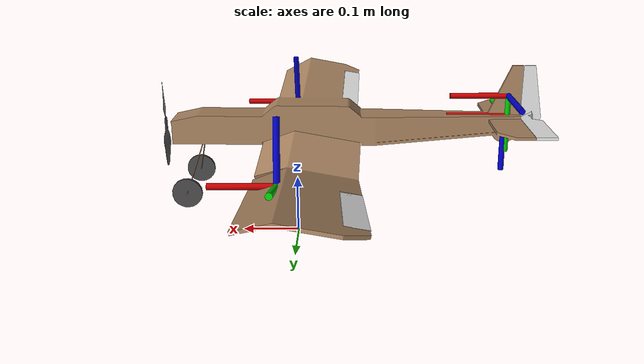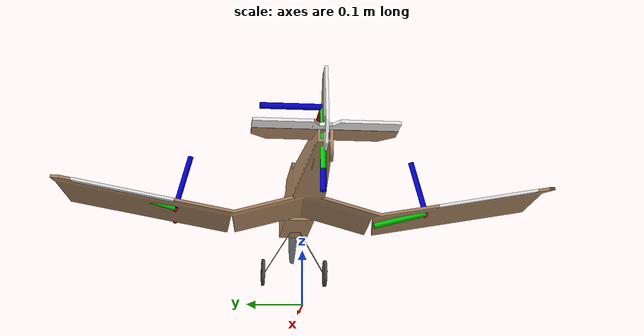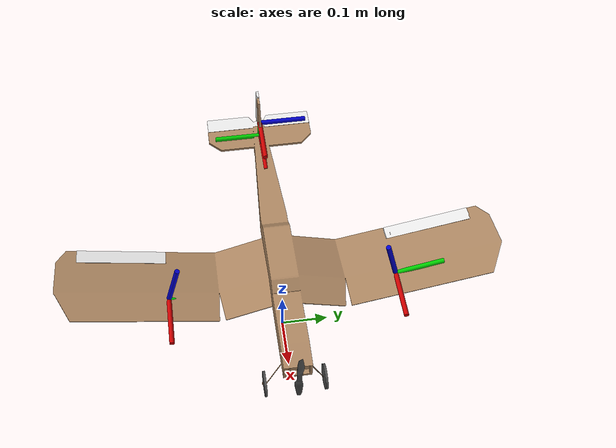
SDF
<?xml version="1.0" ?>
<sdf version="1.6">
  <model name="mini_fixedwing_12">
    <pose>0 0 0.2 0 0 0</pose>
    <link name="fuselage">
      <inertial>
        <pose>0.04 5e-4 -0.01 0 0 0</pose>
        <mass>0.272</mass>
        <inertia>
          <ixx>3.11e-3</ixx>
          <iyy>5.91e-3</iyy>
          <izz>8.86e-3</izz>
        </inertia>
      </inertial>
      <collision name="collision_fuselage">
        <geometry>
          <mesh>
            <uri>model://mini_fixedwing_12/meshes/stl/fuselage.stl</uri>
          </mesh>
        </geometry>
        <surface>
          <friction>
            <ode>
              <mu>0.05</mu>
              <mu2>0.05</mu2>
            </ode>
          </friction>
          <contact>
            <ode>
              <max_vel>0.1</max_vel>
              <min_depth>0.001</min_depth>
            </ode>
          </contact>
        </surface>
      </collision>
      <visual name="visual_fuselage">
        <cast_shadows>1</cast_shadows>
        <material>
          <ambient>0.678 0.529 0.384 1</ambient>
          <diffuse>0.678 0.529 0.384 1</diffuse>
          <specular>0.678 0.529 0.384 1</specular>
        </material>
        <geometry>
          <mesh>
            <uri>model://mini_fixedwing_12/meshes/stl/fuselage.stl</uri>
          </mesh>
        </geometry>
      </visual>

      <visual name='cp_vtail'>
        <pose>-0.365 0 0.05 -1.57 0 0</pose>
        <geometry>
          <mesh>
            <scale>0.1 0.1 0.1</scale>
            <uri>model://mini_fixedwing_11/meshes/axes.dae</uri> </mesh>
        </geometry>
      </visual>
      <visual name='cp_htail'>
        <pose>-0.36 0 0.015 3.14 0 0</pose>
        <geometry>
          <mesh>
            <scale>0.1 0.1 0.1</scale>
            <uri>model://mini_fixedwing_11/meshes/axes.dae</uri> </mesh>
        </geometry>
      </visual>
      <visual name='cp_wing_left'>
        <pose>0.013 0.23 -0.022 0.26 0 0</pose>
        <geometry>
          <mesh>
            <scale>0.1 0.1 0.1</scale>
            <uri>model://mini_fixedwing_11/meshes/axes.dae</uri> </mesh>
        </geometry>
      </visual>
      <visual name='cp_wing_right'>
        <pose>0.013 -0.23 -0.022 -0.26 0 0</pose>
        <geometry>
          <mesh>
            <scale>0.1 0.1 0.1</scale>
            <uri>model://mini_fixedwing_11/meshes/axes.dae</uri> </mesh>
        </geometry>
      </visual>

    </link>

    <link name='rudder'>
      <inertial>
        <pose>-0.405 0 0.019 0 0 0</pose>
        <mass>0.0018</mass>
        <inertia>
          <ixx>3.36e-4</ixx>
          <iyy>3.44e-4</iyy>
          <izz>7.10e-6</izz>
        </inertia>
      </inertial>
      <visual name='visual_rudder'>
        <material>
          <script>
            <name>Gazebo/White</name>
          </script>
        </material>
        <geometry>
          <mesh>
            <uri>model://mini_fixedwing_12/meshes/stl/rudder.stl</uri>
          </mesh>
        </geometry>
      </visual>
    </link>

    <link name='elevator'>
      <inertial>
        <pose>-0.405 0 0.005 0 0 0</pose>
        <mass>0.002</mass>
        <inertia>
          <ixx>9.41e-5</ixx>
          <iyy>2.50e-6</iyy>
          <izz>9.63e-5</izz>
        </inertia>
      </inertial>
      <visual name='visual_elevator'>
        <material>
          <script>
            <name>Gazebo/White</name>
          </script>
        </material>
        <geometry>
          <mesh>
            <uri>model://mini_fixedwing_12/meshes/stl/elevator.stl</uri>
          </mesh>
        </geometry>
      </visual>
    </link>

    <link name='aileron_left'>
      <inertial>
        <pose>-0.1 0.320 -0.015 0.17 0 0</pose>
        <mass>0.0015</mass>
        <inertia>
          <ixx>2.95e-6</ixx>
          <iyy>1.65e-5</iyy>
          <izz>1.94e-5</izz>
        </inertia>
      </inertial>
      <visual name='visual_aileron_left'>
        <material>
          <script>
            <name>Gazebo/White</name>
          </script>
        </material>
        <geometry>
          <mesh>
            <uri>model://mini_fixedwing_12/meshes/stl/aileron_left.stl</uri>
          </mesh>
        </geometry>
      </visual>
    </link>

    <link name='aileron_right'>
      <inertial>
        <pose>-0.1 -0.320 -0.015 -0.17 0 0</pose>
        <mass>0.0015</mass>
        <inertia>
          <ixx>2.95e-6</ixx>
          <iyy>1.65e-5</iyy>
          <izz>1.94e-5</izz>
        </inertia>
      </inertial>
      <visual name='visual_aileron_right'>
        <material>
          <script>
            <name>Gazebo/White</name>
          </script>
        </material>
        <geometry>
          <mesh>
            <uri>model://mini_fixedwing_12/meshes/stl/aileron_right.stl</uri>
          </mesh>
        </geometry>
      </visual>
    </link>

    <link name='wheel_left'>
      <inertial>
        <pose>0.1833 0.0605 -0.1030 0 0 0</pose>
        <mass>0.0025</mass>
        <inertia>
          <ixx>1.4e-5</ixx>
          <iyy>7.64e-6</iyy>
          <izz>1.4e-5</izz>
        </inertia>
      </inertial>
      <collision name='collision_wheel_left'>
        <pose>0.1833 0.0605 -0.1030 1.57 0 0</pose>
        <geometry>
          <cylinder>
            <radius>0.025</radius>
            <length>0.02</length>
          </cylinder>
        </geometry>
        <surface>
          <friction>
            <ode>
              <mu>0.3</mu>
              <mu2>0.3</mu2>
            </ode>
          </friction>
          <contact>
            <ode>
              <max_vel>0.1</max_vel>
              <min_depth>0.001</min_depth>
            </ode>
          </contact>
        </surface>
      </collision>
      <visual name='visual_wheel_left'>
        <material>
          <script>
            <name>Gazebo/DarkGrey</name>
          </script>
        </material>
        <geometry>
          <mesh>
            <uri>model://mini_fixedwing_12/meshes/stl/wheel_left.stl</uri>
          </mesh>
        </geometry>
      </visual>
    </link>

    <link name='wheel_right'>
      <inertial>
        <pose>0.1833 -0.0605 -0.1030 0 0 0</pose>
        <mass>0.0025</mass>
        <inertia>
          <ixx>1.4e-5</ixx>
          <iyy>7.64e-6</iyy>
          <izz>1.4e-5</izz>
        </inertia>
      </inertial>
      <collision name='collision_wheel_right'>
        <pose>0.1833 -0.0605 -0.1030 1.57 0 0</pose>
        <geometry>
          <cylinder>
            <radius>0.025</radius>
            <length>0.02</length>
          </cylinder>
        </geometry>
        <surface>
          <friction>
            <ode>
              <mu>0.3</mu>
              <mu2>0.3</mu2>
            </ode>
          </friction>
          <contact>
            <ode>
              <max_vel>0.1</max_vel>
              <min_depth>0.001</min_depth>
            </ode>
          </contact>
        </surface>
      </collision>
      <visual name='visual_wheel_right'>
        <material>
          <script>
            <name>Gazebo/DarkGrey</name>
          </script>
        </material>
        <geometry>
          <mesh>
            <uri>model://mini_fixedwing_12/meshes/stl/wheel_right.stl</uri>
          </mesh>
        </geometry>
      </visual>
    </link>

    <link name='propeller'>
      <inertial>
        <pose>0.2175 0 -0.0111 0 0 0</pose>
        <mass>0.0084</mass>
        <inertia>
          <ixx>1e-6</ixx>
          <iyy>1e-6</iyy>
          <izz>1e-6</izz>
        </inertia>
      </inertial>
      <visual name='visual_propeller'>
        <material>
          <script>
            <name>Gazebo/DarkGrey</name>
          </script>
        </material>
        <geometry>
          <mesh>
            <uri>model://mini_fixedwing_12/meshes/stl/propeller.stl</uri>
          </mesh>
        </geometry>
      </visual>
    </link>

    <joint name='wheel_left_joint' type='revolute'>
      <pose>0.1833 0.0605 -0.1030 0 0 0</pose>
      <parent>fuselage</parent>
      <child>wheel_left</child>
      <axis>
        <xyz>0 1 0</xyz>
        <dynamics>
          <damping>0.1</damping>
        </dynamics>
      </axis>
      <physics>
        <ode>
          <implicit_spring_damper>1</implicit_spring_damper>
        </ode>
      </physics>
    </joint>

    <joint name='wheel_right_joint' type='revolute'>
      <pose>0.1833 -0.0605 -0.1030 0 0 0</pose>
      <parent>fuselage</parent>
      <child>wheel_right</child>
      <axis>
        <xyz>0 1 0</xyz>
        <dynamics>
          <damping>0.1</damping>
        </dynamics>
      </axis>
      <physics>
        <ode>
          <implicit_spring_damper>1</implicit_spring_damper>
        </ode>
      </physics>
    </joint>

    <joint name='elevator_joint' type='revolute'>
      <pose>-0.39 0 0.005 0 0 0</pose>
      <parent>fuselage</parent>
      <child>elevator</child>
      <axis>
        <xyz>0 1 0</xyz>
        <dynamics>
          <damping>0.1</damping>
        </dynamics>
        <limit>
          <lower>-0.5</lower>
          <upper>0.5</upper>
        </limit>
      </axis>
      <physics>
        <ode>
          <implicit_spring_damper>1</implicit_spring_damper>
        </ode>
      </physics>
    </joint>

    <joint name='rudder_joint' type='revolute'>
      <pose>-0.39 0 0.016 0 0 0</pose>
      <parent>fuselage</parent>
      <child>rudder</child>
      <axis>
        <xyz>0 0 1</xyz>
        <dynamics>
          <damping>0.1</damping>
        </dynamics>
        <limit>
          <lower>-0.5</lower>
          <upper>0.5</upper>
        </limit>
      </axis>
      <physics>
        <ode>
          <implicit_spring_damper>1</implicit_spring_damper>
        </ode>
      </physics>
    </joint>

    <joint name='aileron_left_joint' type='revolute'>
      <pose>-0.08 0.320 -0.015 0.17 0 0</pose>
      <parent>fuselage</parent>
      <child>aileron_left</child>
      <axis>
        <xyz>0 -1 0</xyz>
        <dynamics>
          <damping>0.1</damping>
        </dynamics>
        <limit>
          <lower>-0.5</lower>
          <upper>0.5</upper>
        </limit>
      </axis>
      <physics>
        <ode>
          <implicit_spring_damper>1</implicit_spring_damper>
        </ode>
      </physics>
    </joint>

    <joint name='aileron_right_joint' type='revolute'>
      <pose>-0.08 -0.320 -0.015 -0.17 0 0</pose>
      <parent>fuselage</parent>
      <child>aileron_right</child>
      <axis>
        <xyz>0 -1 0</xyz>
        <dynamics>
          <damping>0.1</damping>
        </dynamics>
        <limit>
          <lower>-0.5</lower>
          <upper>0.5</upper>
        </limit>
      </axis>
      <physics>
        <ode>
          <implicit_spring_damper>1</implicit_spring_damper>
        </ode>
      </physics>
    </joint>

    <joint name='propeller_joint' type='revolute'>
      <pose>0.2175 0 -0.0111 0 0 0</pose>
      <parent>fuselage</parent>
      <child>propeller</child>
      <axis>
        <xyz>1 0 0</xyz>
      </axis>
    </joint>

    <include>
      <uri>model://gps</uri>
      <pose>0 0 0 0 0 0</pose>
      <name>gps</name>
    </include>
    <joint name='gps_joint' type='fixed'>
      <child>gps::link</child>
      <parent>fuselage</parent>
    </joint>

    <plugin name='wing_left' filename='libLiftDragPlugin2.so'>
      <link_name>fuselage</link_name>
      <pose>0.013 0.23 -0.022 0.26 0 0</pose>
      <cL0>0.5</cL0>
      <cLa>6</cLa>
      <!--check cm0-->
      <cm0>-0.01</cm0>
      <cma>0</cma>
      <cD0>0.03</cD0>
      <kcDcL>0.1</kcDcL>
      <alpha_stall>0.122</alpha_stall>
      <cLa_stall>-1.27</cLa_stall>
      <cma_stall>0</cma_stall>
      <area>0.06</area>
      <air_density>1.255</air_density>
      <control_joint_name>aileron_left_joint</control_joint_name>
      <control_joint_rad_to_cL>1.0</control_joint_rad_to_cL>
      <control_joint_rad_to_cm>-0.25</control_joint_rad_to_cm>
      <verbose>0</verbose>
    </plugin>

    <plugin name='wing_right' filename='libLiftDragPlugin2.so'>
      <link_name>fuselage</link_name>
      <pose>0.013 -0.23 -0.022 -0.26 0 0</pose>
      <cL0>0.5</cL0>
      <cLa>6</cLa>
      <!--check cm0-->
      <cm0>-0.01</cm0>
      <cma>0</cma>
      <cD0>0.03</cD0>
      <kcDcL>0.1</kcDcL>
      <alpha_stall>0.122</alpha_stall>
      <cLa_stall>-1.27</cLa_stall>
      <cma_stall>0</cma_stall>
      <area>0.06</area>
      <air_density>1.255</air_density>
      <control_joint_name>aileron_right_joint</control_joint_name>
      <control_joint_rad_to_cL>1.0</control_joint_rad_to_cL>
      <control_joint_rad_to_cm>-0.25</control_joint_rad_to_cm>
      <verbose>0</verbose>
    </plugin>

    <plugin name='vtail' filename='libLiftDragPlugin2.so'>
      <link_name>fuselage</link_name>
      <pose>-0.365 0 0.05 -1.57 0 0</pose>
      <cL0>0</cL0>
      <cLa>5.73</cLa>
      <cm0>0</cm0>
      <cma>0</cma>
      <cD0>0.03</cD0>
      <kcDcL>0.1</kcDcL>
      <alpha_stall>0.174</alpha_stall>
      <cLa_stall>-2.65</cLa_stall>
      <cma_stall>0</cma_stall>
      <area>0.01</area>
      <air_density>1.225</air_density>
      <control_joint_name>rudder_joint</control_joint_name>
      <control_joint_rad_to_cL>1.0</control_joint_rad_to_cL>
      <control_joint_rad_to_cm>-0.25</control_joint_rad_to_cm>
      <verbose>0</verbose>
    </plugin>

    <plugin name='htail' filename='libLiftDragPlugin2.so'>
      <link_name>fuselage</link_name>
      <pose>-0.36 0 0.015 3.14 0 0</pose>
      <cL0>0</cL0>
      <cLa>5.73</cLa>
      <cm0>0</cm0>
      <cma>0</cma>
      <cD0>0.03</cD0>
      <kcDcL>0.1</kcDcL>
      <alpha_stall>0.174</alpha_stall>
      <cLa_stall>-2.65</cLa_stall>
      <cma_stall>0</cma_stall>
      <area>0.01</area>
      <air_density>1.225</air_density>
      <control_joint_name>elevator_joint</control_joint_name>
      <control_joint_rad_to_cL>1.0</control_joint_rad_to_cL>
      <control_joint_rad_to_cm>-0.25</control_joint_rad_to_cm>
      <verbose>0</verbose>
    </plugin>

    <!--Start PX4 autopilot-->

    <link name='imu_link'>
      <pose>0.04 0 0 0 0 0</pose>
      <inertial>
        <mass>0.001</mass>
        <inertia>
          <ixx>1e-05</ixx>
          <iyy>1e-05</iyy>
          <izz>1e-05</izz>
        </inertia>
      </inertial>
    </link>

    <joint name='imu_joint' type='revolute'>
      <child>imu_link</child>
      <parent>fuselage</parent>
      <axis>
        <xyz>1 0 0</xyz>
        <limit>
          <lower>0</lower>
          <upper>0</upper>
          <effort>0</effort>
          <velocity>0</velocity>
        </limit>
        <dynamics>
          <spring_reference>0</spring_reference>
          <spring_stiffness>0</spring_stiffness>
        </dynamics>
        <use_parent_model_frame>1</use_parent_model_frame>
      </axis>
    </joint>

    <link name='airspeed_link'>
      <pose>0 0 0 0 0 0</pose>
      <inertial>
        <pose>0 0 0 0 0 0</pose>
        <mass>0.015</mass>
        <inertia>
          <ixx>1e-05</ixx>
          <ixy>0</ixy>
          <ixz>0</ixz>
          <iyy>1e-05</iyy>
          <iyz>0</iyz>
          <izz>1e-05</izz>
        </inertia>
      </inertial>
    </link>
    <joint name='airspeed_joint' type='revolute'>
      <child>airspeed_link</child>
      <parent>fuselage</parent>
      <axis>
        <xyz>1 0 0</xyz>
        <limit>
          <lower>0</lower>
          <upper>0</upper>
          <effort>0</effort>
          <velocity>0</velocity>
        </limit>
        <dynamics>
          <spring_reference>0</spring_reference>
          <spring_stiffness>0</spring_stiffness>
        </dynamics>
        <use_parent_model_frame>1</use_parent_model_frame>
      </axis>
    </joint>

    <plugin name='gazebo_imu_plugin' filename='libgazebo_imu_plugin.so'>
      <robotNamespace></robotNamespace>
      <linkName>imu_link</linkName>
      <imuTopic>/imu</imuTopic>
      <gyroscopeNoiseDensity>0.0003394</gyroscopeNoiseDensity>
      <gyroscopeRandomWalk>3.8785e-05</gyroscopeRandomWalk>
      <gyroscopeBiasCorrelationTime>1000.0</gyroscopeBiasCorrelationTime>
      <gyroscopeTurnOnBiasSigma>0.0087</gyroscopeTurnOnBiasSigma>
      <accelerometerNoiseDensity>0.004</accelerometerNoiseDensity>
      <accelerometerRandomWalk>0.006</accelerometerRandomWalk>
      <accelerometerBiasCorrelationTime>300.0</accelerometerBiasCorrelationTime>
      <accelerometerTurnOnBiasSigma>0.196</accelerometerTurnOnBiasSigma>
    </plugin>

    <plugin name='groundtruth_plugin' filename='libgazebo_groundtruth_plugin.so'>
      <robotNamespace/>
    </plugin>

    <plugin name='magnetometer_plugin' filename='libgazebo_magnetometer_plugin.so'>
      <robotNamespace/>
      <pubRate>100</pubRate>
      <noiseDensity>0.0004</noiseDensity>
      <randomWalk>6.4e-06</randomWalk>
      <biasCorrelationTime>600</biasCorrelationTime>
      <magTopic>/mag</magTopic>
    </plugin>

    <plugin name='barometer_plugin' filename='libgazebo_barometer_plugin.so'>
      <robotNamespace/>
      <pubRate>50</pubRate>
      <baroTopic>/baro</baroTopic>
    </plugin>

    <plugin name='airspeed_plugin' filename='libgazebo_airspeed_plugin.so'>
      <robotNamespace/>
      <linkName>airspeed_link</linkName>
    </plugin>

    <plugin name='motor_plugin' filename='libMotorPlugin.so'>
      <gztopic>/throttle1</gztopic>
      <joint_name>propeller_joint</joint_name>
      <prop_name>propeller</prop_name>
      <diameter>6</diameter>
      <ct>0.1893 -0.0023 -0.4128 0.2894 -0.0921</ct>
      <cp>0.1518 -0.2083 0.3144 -0.3632 0.0912</cp>
      <kV>3750</kV>
      <iMax>30</iMax>
      <i0>0.6</i0>
      <r0>0.098</r0>
      <battV>11.1</battV>
      <capacity>850</capacity>
      <axis_num>0</axis_num>
      <motor_eff>0.7</motor_eff>
      <verbose>1</verbose>
    </plugin>

    <plugin name='mavlink_interface' filename='libgazebo_mavlink_interface.so'>
      <robotNamespace></robotNamespace>
      <imuSubTopic>/imu</imuSubTopic>

      <magSubTopic>/mag</magSubTopic>
      <baroSubTopic>/baro</baroSubTopic>
      <mavlink_addr>INADDR_ANY</mavlink_addr>
      <mavlink_udp_port>14560</mavlink_udp_port>
      <serialEnabled>false</serialEnabled>
      <serialDevice>/dev/ttyACM0</serialDevice>
      <baudRate>921600</baudRate>
      <qgc_addr>INADDR_ANY</qgc_addr>
      <qgc_udp_port>14550</qgc_udp_port>
      <sdk_addr>INADDR_ANY</sdk_addr>
      <sdk_udp_port>14540</sdk_udp_port>
      <hil_mode>false</hil_mode>
      <hil_state_level>false</hil_state_level>
      <enable_lockstep>true</enable_lockstep>
      <use_tcp>true</use_tcp>
      <motorSpeedCommandPubTopic>/gazebo/command/motor_speed</motorSpeedCommandPubTopic>
      <control_channels>
        <channel name="rudder">
          <input_index>2</input_index>
          <input_offset>0</input_offset>
          <input_scaling>0.2</input_scaling>
          <zero_position_disarmed>0</zero_position_disarmed>
          <zero_position_armed>0</zero_position_armed>
          <joint_control_type>position</joint_control_type>
          <joint_name>rudder_joint</joint_name>
          <joint_control_pid>
            <p>10</p>
            <i>0</i>
            <d>0</d>
            <iMax>0</iMax>
            <iMin>0</iMin>
            <cmdMax>0.28</cmdMax>
            <cmdMin>-0.28</cmdMin>
          </joint_control_pid>
        </channel>
        <channel name="puller">
          <input_index>4</input_index>
          <input_offset>0</input_offset>
          <input_scaling>0.8</input_scaling>
          <zero_position_disarmed>0</zero_position_disarmed>
          <zero_position_armed>0</zero_position_armed>
          <joint_control_type>position_gztopic</joint_control_type>
          <gztopic>/throttle1</gztopic>
          <joint_name>propeller_joint</joint_name>
        </channel>
        <channel name="aileron_left">
          <input_index>5</input_index>
          <input_offset>0</input_offset>
          <input_scaling>-0.28</input_scaling>
          <zero_position_disarmed>0</zero_position_disarmed>
          <zero_position_armed>0</zero_position_armed>
          <joint_control_type>position</joint_control_type>
          <joint_name>aileron_left_joint</joint_name>
          <joint_control_pid>
            <p>10</p>
            <i>0</i>
            <d>0</d>
            <iMax>0</iMax>
            <iMin>0</iMin>
            <cmdMax>0.28</cmdMax>
            <cmdMin>-0.28</cmdMin>
          </joint_control_pid>
        </channel>
        <channel name="aileron_right">
          <input_index>6</input_index>
          <input_offset>0</input_offset>
          <input_scaling>-0.28</input_scaling>
          <zero_position_disarmed>0</zero_position_disarmed>
          <zero_position_armed>0</zero_position_armed>
          <joint_control_type>position</joint_control_type>
          <joint_name>aileron_right_joint</joint_name>
          <joint_control_pid>
            <p>10</p>
            <i>0</i>
            <d>0</d>
            <iMax>0</iMax>
            <iMin>0</iMin>
            <cmdMax>0.28</cmdMax>
            <cmdMin>-0.28</cmdMin>
          </joint_control_pid>
        </channel>
        <channel name="elevator">
          <input_index>7</input_index>
          <input_offset>0</input_offset>
          <input_scaling>0.28</input_scaling>
          <zero_position_disarmed>0</zero_position_disarmed>
          <zero_position_armed>0</zero_position_armed>
          <joint_control_type>position</joint_control_type>
          <joint_name>elevator_joint</joint_name>
          <joint_control_pid>
            <p>10</p>
            <i>0</i>
            <d>0</d>
            <iMax>0</iMax>
            <iMin>0</iMin>
            <cmdMax>0.28</cmdMax>
            <cmdMin>-0.28</cmdMin>
          </joint_control_pid>
        </channel>
      </control_channels>

    </plugin>

  </model>
</sdf>

<!-- vim: set et fenc=utf-8 ff=unix sts=0 sw=2 ts=2 : -->

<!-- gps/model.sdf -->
<sdf version="1.6">
  <model name="gps">
    <link name="link">
      <pose>0 0 0 0 0 0</pose>
      <inertial>
        <pose>0 0 0 0 0 0</pose>
        <mass>0.015</mass>
        <inertia>
          <ixx>1e-05</ixx>
          <ixy>0</ixy>
          <ixz>0</ixz>
          <iyy>1e-05</iyy>
          <iyz>0</iyz>
          <izz>1e-05</izz>
        </inertia>
      </inertial>
      <visual name="visual">
        <geometry>
          <cylinder>
            <radius>0.01</radius>
            <length>0.002</length>
          </cylinder>
        </geometry>
        <material>
          <script>
            <name>Gazebo/Black</name>
            <uri>file://usr/share/gz/gz-sim8/media/gazebo.material</uri>
          </script>
        </material>
      </visual>
      <sensor name="gps" type="gps">
        <pose>0 0 0 0 0 0</pose>
        <update_rate>5.0</update_rate>
        <always_on>true</always_on>
        <visualize>false</visualize>
        <!-- GpsSensor noise currently not used -->
        <plugin name="gps_plugin" filename="libgazebo_gps_plugin.so">
          <robotNamespace></robotNamespace>
          <gpsNoise>true</gpsNoise>
          <gpsXYRandomWalk>2.0</gpsXYRandomWalk>
          <gpsZRandomWalk>4.0</gpsZRandomWalk>
          <gpsXYNoiseDensity>2.0e-4</gpsXYNoiseDensity>
          <gpsZNoiseDensity>4.0e-4</gpsZNoiseDensity>
          <gpsVXYNoiseDensity>0.2</gpsVXYNoiseDensity>
          <gpsVZNoiseDensity>0.4</gpsVZNoiseDensity>
        </plugin>
      </sensor>
    </link>
  </model>
</sdf>
